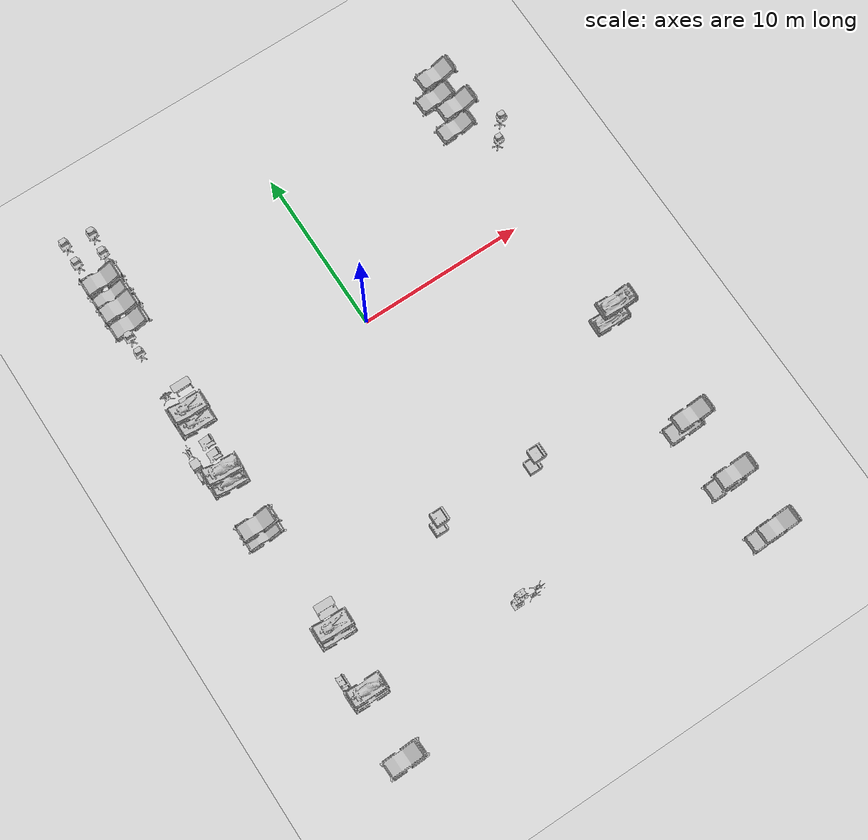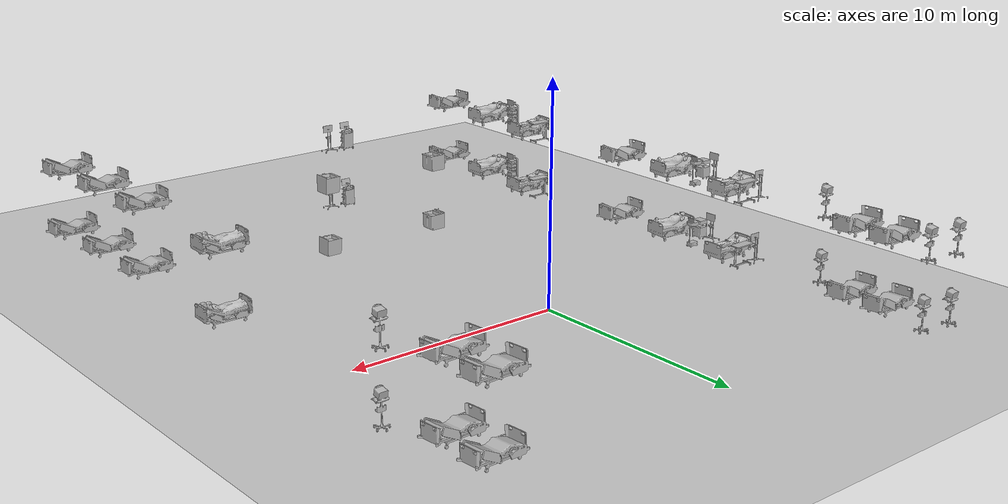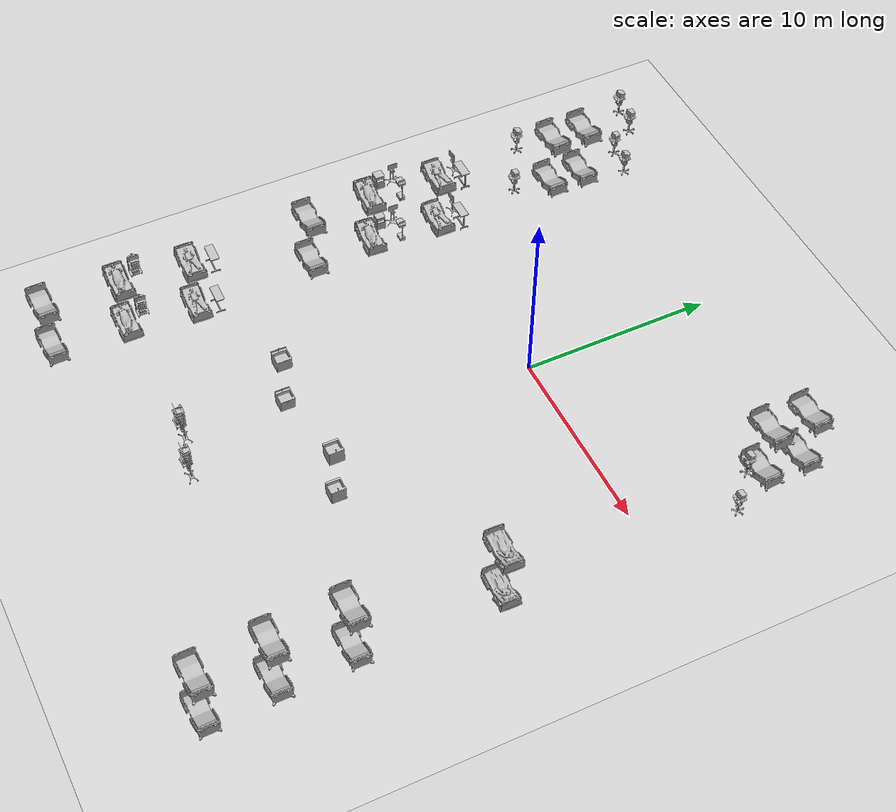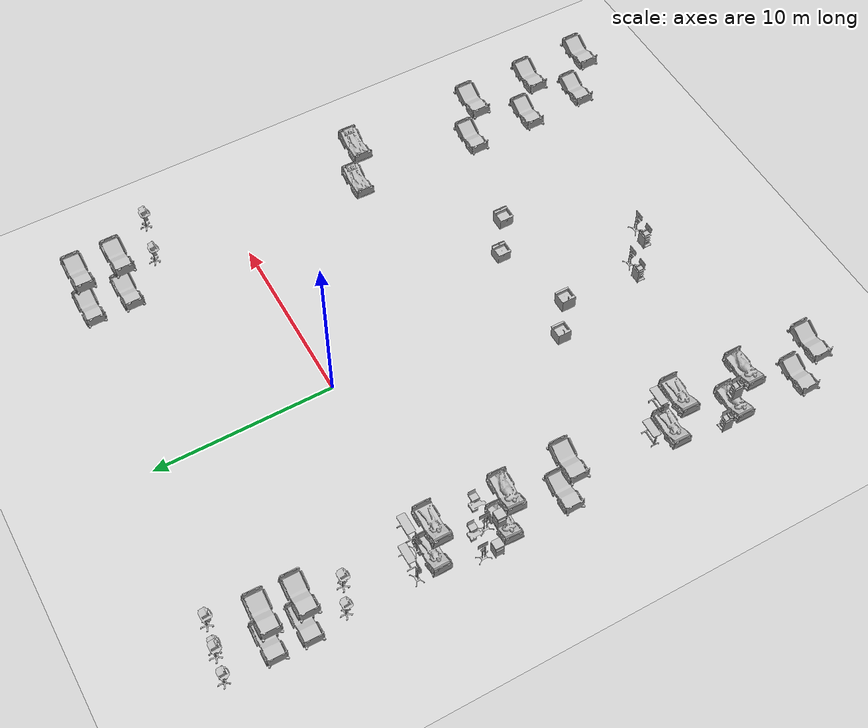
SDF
<sdf version="1.6">
 <world name="world">
  <gravity>0 0 -9.8</gravity>
  <physics default="0" name="default_physics" type="ode">
   <max_step_size>0.001</max_step_size>
   <real_time_factor>1</real_time_factor>
   <real_time_update_rate>1000</real_time_update_rate>
  </physics>
  <scene><ambient>0.6 0.6 0.6 1</ambient><background>0.4 0.4 0.4 1</background><shadows>false</shadows></scene>
  <include><uri>model://sun</uri></include>
  <include><uri>model://ground_plane</uri><pose>0 0 -0.1 0 -0 0</pose></include>
  <model name="CGMClassic_1">
   <include>
    <uri>model://CGMClassic</uri>
    <static>true</static>
    <pose>11.1777 -18.4129 0 0 0 -3.13719</pose>
   </include>
  </model>
  <model name="CGMClassic_2">
   <include>
    <uri>model://CGMClassic</uri>
    <static>true</static>
    <pose>11.1179 -14.6493 0 0 0 -3.13599</pose>
   </include>
  </model>
  <model name="CGMClassic_3">
   <include>
    <uri>model://CGMClassic</uri>
    <static>true</static>
    <pose>-11.2304 -21.1134 0 0 0 -3.11834</pose>
   </include>
  </model>
  <model name="ElderLadyPatient_1">
   <include>
    <uri>model://ElderLadyPatient</uri>
    <static>true</static>
    <pose>-10.9972 0.231354 0.001654 0 -0 0</pose>
   </include>
  </model>
  <model name="ElderLadyPatient_2">
   <include>
    <uri>model://ElderLadyPatient</uri>
    <static>true</static>
    <pose>-10.8133 -13.5925 0.001657 0 -2e-06 -0.025052</pose>
   </include>
  </model>
  <model name="CGMClassic_4">
   <include>
    <uri>model://CGMClassic</uri>
    <static>true</static>
    <pose>-11.0878 -7.00992 0 0 -0 3.1351</pose>
   </include>
  </model>
  <model name="InstrumentCart1_1">
   <include>
    <uri>model://InstrumentCart1</uri>
    <static>true</static>
    <pose>-11.8071 -16.1825 0 0 -0 1.56702</pose>
   </include>
  </model>
  <model name="ElderMalePatient_1">
   <include>
    <uri>model://ElderMalePatient</uri>
    <static>true</static>
    <pose>-11.1165 -17.2377 0.001656 0 3e-06 0</pose>
   </include>
  </model>
  <model name="InstrumentCart2_1">
   <include>
    <uri>model://InstrumentCart2</uri>
    <static>true</static>
    <pose>-12.0906 -1.87329 0.051875 0 -0 1.57773</pose>
   </include>
  </model>
  <model name="InstrumentCart2_2">
   <include>
    <uri>model://InstrumentCart2</uri>
    <static>true</static>
    <pose>-11.5231 1.34237 0 0 -0 0</pose>
   </include>
  </model>
  <model name="CGMClassic_5">
   <include>
    <uri>model://CGMClassic</uri>
    <static>true</static>
    <pose>-11.0106 8.9505 -0.008203 -0.035019 -0.000392 3.13388</pose>
   </include>
  </model>
  <model name="CGMClassic_6">
   <include>
    <uri>model://CGMClassic</uri>
    <static>true</static>
    <pose>-11.025 7.10335 0 -0.035021 1.8e-05 -3.13762</pose>
   </include>
  </model>
  <model name="BedTable_1">
   <include>
    <uri>model://BedTable</uri>
    <static>true</static>
    <pose>-10.4759 1.39442 0.001184 0 -3e-06 0</pose>
   </include>
  </model>
  <model name="BedTable_2">
   <include>
    <uri>model://BedTable</uri>
    <static>true</static>
    <pose>-10.5874 -12.5084 0.001189 0 -0 3.11588</pose>
   </include>
  </model>
  <model name="BedsideTable_1">
   <include>
    <uri>model://BedsideTable</uri>
    <static>true</static>
    <pose>-12.1499 -2.63111 0.00018 1e-06 -0 -0.00878</pose>
   </include>
  </model>
  <model name="InstrumentCart1_2">
   <include>
    <uri>model://InstrumentCart1</uri>
    <static>true</static>
    <pose>-11.8071 -16.1825 0 0 -0 1.56702</pose>
   </include>
  </model>
  <model name="InstrumentCart2_3">
   <include>
    <uri>model://InstrumentCart2</uri>
    <static>true</static>
    <pose>-0.869537 -17.7436 0 0 0 -0.002595</pose>
   </include>
  </model>
  <model name="KitchenSink_1">
   <include>
    <uri>model://KitchenSink</uri>
    <static>true</static>
    <pose>3.06236 -11.8809 -0.001614 0 -0 3.1391</pose>
   </include>
  </model>
  <model name="KitchenSink_2">
   <include>
    <uri>model://KitchenSink</uri>
    <static>true</static>
    <pose>-3.09305 -11.8988 -0.001609 0 -0 0</pose>
   </include>
  </model>
  <model name="CGMClassic_7">
   <include>
    <uri>model://CGMClassic</uri>
    <static>true</static>
    <pose>10.6166 9.06291 -0.008203 -0.03501 0.000885 -3.11285</pose>
   </include>
  </model>
  <model name="CGMClassic_8">
   <include>
    <uri>model://CGMClassic</uri>
    <static>true</static>
    <pose>10.6006 6.90956 -0.008203 -0.035003 0.001133 -3.10576</pose>
   </include>
  </model>
  <model name="MalePatientBed_1">
   <include>
    <uri>model://MalePatientBed</uri>
    <static>true</static>
    <pose>11.3771 -7.38891 0.001658 -1e-06 1e-06 3.11598</pose>
   </include>
  </model>
  <model name="CGMClassic_9">
   <include>
    <uri>model://CGMClassic</uri>
    <static>true</static>
    <pose>11.3613 -21.8867 0 0 0 -3.12292</pose>
   </include>
  </model>
  <model name="InstrumentCart1_3">
   <include>
    <uri>model://InstrumentCart1</uri>
    <static>true</static>
    <pose>-1.83539 -17.5879 0 0 -0 0</pose>
   </include>
  </model>
  <model name="ElderMalePatient_2">
   <include>
    <uri>model://ElderMalePatient</uri>
    <static>true</static>
    <pose>-11.2471 -3.5813 0.001656 0 -0 -0.054192</pose>
   </include>
  </model>
  <model name="BMWCart_1">
   <include><uri>model://BMWCart</uri><static>true</static><pose>-10.931 -1.9483 0 0 -0 0</pose></include>
  </model>
  <model name="BPCart_1">
   <include>
    <uri>model://BPCart</uri>
    <static>true</static>
    <pose>-10.1788 11.173 0.003446 1e-06 -0 0.003096</pose>
   </include>
  </model>
  <model name="BPCart_2">
   <include><uri>model://BPCart</uri><static>true</static><pose>12.0072 4.64765 0 0 -0 0</pose></include>
  </model>
  <model name="BPCart_3">
   <include><uri>model://BPCart</uri><static>true</static><pose>-11.7236 11.4294 0 0 -0 0</pose></include>
  </model>
  <model name="BPCart_4">
   <include>
    <uri>model://BPCart</uri>
    <static>true</static>
    <pose>-11.4703 5.05999 0.003446 1e-06 -0 0.003096</pose>
   </include>
  </model>
  <model name="floor_1_CGMClassic_1">
   <include>
    <uri>model://CGMClassic</uri>
    <static>true</static>
    <pose>11.1777 -18.4129 3.0 0 0 -3.13719</pose>
   </include>
  </model>
  <model name="floor_1_CGMClassic_2">
   <include>
    <uri>model://CGMClassic</uri>
    <static>true</static>
    <pose>11.1179 -14.6493 3.0 0 0 -3.13599</pose>
   </include>
  </model>
  <model name="floor_1_CGMClassic_3">
   <include>
    <uri>model://CGMClassic</uri>
    <static>true</static>
    <pose>-11.2304 -21.1134 3.0 0 0 -3.11834</pose>
   </include>
  </model>
  <model name="floor_1_ElderLadyPatient_1">
   <include>
    <uri>model://ElderLadyPatient</uri>
    <static>true</static>
    <pose>-10.9972 0.231354 3.001654 0 -0 0</pose>
   </include>
  </model>
  <model name="floor_1_ElderLadyPatient_2">
   <include>
    <uri>model://ElderLadyPatient</uri>
    <static>true</static>
    <pose>-10.8133 -13.5925 3.001657 0 -2e-06 -0.025052</pose>
   </include>
  </model>
  <model name="floor_1_CGMClassic_4">
   <include>
    <uri>model://CGMClassic</uri>
    <static>true</static>
    <pose>-11.0878 -7.00992 3.0 0 -0 3.1351</pose>
   </include>
  </model>
  <model name="floor_1_InstrumentCart1_1">
   <include>
    <uri>model://InstrumentCart1</uri>
    <static>true</static>
    <pose>-11.8071 -16.1825 3.0 0 -0 1.56702</pose>
   </include>
  </model>
  <model name="floor_1_ElderMalePatient_1">
   <include>
    <uri>model://ElderMalePatient</uri>
    <static>true</static>
    <pose>-11.1165 -17.2377 3.001656 0 3e-06 0</pose>
   </include>
  </model>
  <model name="floor_1_InstrumentCart2_1">
   <include>
    <uri>model://InstrumentCart2</uri>
    <static>true</static>
    <pose>-12.0906 -1.87329 3.051875 0 -0 1.57773</pose>
   </include>
  </model>
  <model name="floor_1_InstrumentCart2_2">
   <include>
    <uri>model://InstrumentCart2</uri>
    <static>true</static>
    <pose>-11.5231 1.34237 3.0 0 -0 0</pose>
   </include>
  </model>
  <model name="floor_1_CGMClassic_5">
   <include>
    <uri>model://CGMClassic</uri>
    <static>true</static>
    <pose>-11.0106 8.9505 2.991797 -0.035019 -0.000392 3.13388</pose>
   </include>
  </model>
  <model name="floor_1_CGMClassic_6">
   <include>
    <uri>model://CGMClassic</uri>
    <static>true</static>
    <pose>-11.025 7.10335 3.0 -0.035021 1.8e-05 -3.13762</pose>
   </include>
  </model>
  <model name="floor_1_BedTable_1">
   <include>
    <uri>model://BedTable</uri>
    <static>true</static>
    <pose>-10.4759 1.39442 3.001184 0 -3e-06 0</pose>
   </include>
  </model>
  <model name="floor_1_BedTable_2">
   <include>
    <uri>model://BedTable</uri>
    <static>true</static>
    <pose>-10.5874 -12.5084 3.001189 0 -0 3.11588</pose>
   </include>
  </model>
  <model name="floor_1_BedsideTable_1">
   <include>
    <uri>model://BedsideTable</uri>
    <static>true</static>
    <pose>-12.1499 -2.63111 3.00018 1e-06 -0 -0.00878</pose>
   </include>
  </model>
  <model name="floor_1_InstrumentCart1_2">
   <include>
    <uri>model://InstrumentCart1</uri>
    <static>true</static>
    <pose>-11.8071 -16.1825 3.0 0 -0 1.56702</pose>
   </include>
  </model>
  <model name="floor_1_InstrumentCart2_3">
   <include>
    <uri>model://InstrumentCart2</uri>
    <static>true</static>
    <pose>-0.869537 -17.7436 3.0 0 0 -0.002595</pose>
   </include>
  </model>
  <model name="floor_1_KitchenSink_1">
   <include>
    <uri>model://KitchenSink</uri>
    <static>true</static>
    <pose>3.06236 -11.8809 2.998386 0 -0 3.1391</pose>
   </include>
  </model>
  <model name="floor_1_KitchenSink_2">
   <include>
    <uri>model://KitchenSink</uri>
    <static>true</static>
    <pose>-3.09305 -11.8988 2.998391 0 -0 0</pose>
   </include>
  </model>
  <model name="floor_1_CGMClassic_7">
   <include>
    <uri>model://CGMClassic</uri>
    <static>true</static>
    <pose>10.6166 9.06291 2.991797 -0.03501 0.000885 -3.11285</pose>
   </include>
  </model>
  <model name="floor_1_CGMClassic_8">
   <include>
    <uri>model://CGMClassic</uri>
    <static>true</static>
    <pose>10.6006 6.90956 2.991797 -0.035003 0.001133 -3.10576</pose>
   </include>
  </model>
  <model name="floor_1_MalePatientBed_1">
   <include>
    <uri>model://MalePatientBed</uri>
    <static>true</static>
    <pose>11.3771 -7.38891 3.001658 -1e-06 1e-06 3.11598</pose>
   </include>
  </model>
  <model name="floor_1_CGMClassic_9">
   <include>
    <uri>model://CGMClassic</uri>
    <static>true</static>
    <pose>11.3613 -21.8867 3.0 0 0 -3.12292</pose>
   </include>
  </model>
  <model name="floor_1_InstrumentCart1_3">
   <include>
    <uri>model://InstrumentCart1</uri>
    <static>true</static>
    <pose>-1.83539 -17.5879 3.0 0 -0 0</pose>
   </include>
  </model>
  <model name="floor_1_ElderMalePatient_2">
   <include>
    <uri>model://ElderMalePatient</uri>
    <static>true</static>
    <pose>-11.2471 -3.5813 3.001656 0 -0 -0.054192</pose>
   </include>
  </model>
  <model name="floor_1_BMWCart_1">
   <include><uri>model://BMWCart</uri><static>true</static><pose>-10.931 -1.9483 3.0 0 -0 0</pose></include>
  </model>
  <model name="floor_1_BPCart_1">
   <include>
    <uri>model://BPCart</uri>
    <static>true</static>
    <pose>-10.1788 11.173 3.003446 1e-06 -0 0.003096</pose>
   </include>
  </model>
  <model name="floor_1_BPCart_2">
   <include><uri>model://BPCart</uri><static>true</static><pose>12.0072 4.64765 3.0 0 -0 0</pose></include>
  </model>
  <model name="floor_1_BPCart_3">
   <include><uri>model://BPCart</uri><static>true</static><pose>-11.7236 11.4294 3.0 0 -0 0</pose></include>
  </model>
  <model name="floor_1_BPCart_4">
   <include>
    <uri>model://BPCart</uri>
    <static>true</static>
    <pose>-11.4703 5.05999 3.003446 1e-06 -0 0.003096</pose>
   </include>
  </model>
 </world>
</sdf>

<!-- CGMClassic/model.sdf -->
<sdf version="1.6">
  <model name="CGMClassic">
   <static>true</static>
    <link name="body">
      <pose>0 0 0 0 0 0</pose>

      <visual name="visual">
        <geometry>
          <mesh>
            <uri>model://CGMClassic/meshes/CGMClassic.obj</uri>
            <scale>0.01 0.01 0.01</scale>
          </mesh>
        </geometry>
      </visual>

      <collision name="collision">
        <geometry>
          <mesh>
            <uri>model://CGMClassic/meshes/CGMClassic.obj</uri>
            <scale>0.01 0.01 0.01</scale>
          </mesh>
        </geometry>
      </collision>

    </link>
  </model>
</sdf>

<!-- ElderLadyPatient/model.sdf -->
<sdf version="1.6">
  <model name='ElderLadyPatient'>
    <link name="body">
      <pose>0 0 0 0 0 0</pose>

      <visual name="visual">
        <geometry>
          <mesh>
            <uri>model://ElderLadyPatient/meshes/ElderFemale.obj</uri>
          </mesh>
        </geometry>
      </visual>

      <collision name="collision">
        <geometry>
          <mesh>
            <uri>model://ElderLadyPatient/meshes/ElderFemale.obj</uri>
          </mesh>
        </geometry>
      </collision>

    </link>
  </model>
</sdf>

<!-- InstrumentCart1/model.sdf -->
<sdf version="1.6">
  <model name="InstrumentCart1">
   <static>true</static>
    <link name="body">
      <pose>0 0 0 0 0 0</pose>

      <visual name="visual">
        <geometry>
          <mesh>
            <uri>model://InstrumentCart1/meshes/InstrumentCart1.obj</uri>
          </mesh>
        </geometry>
      </visual>

      <collision name="collision">
        <geometry>
          <mesh>
            <uri>model://InstrumentCart1/meshes/InstrumentCart1.obj</uri>
          </mesh>
        </geometry>
      </collision>

    </link>
  </model>
</sdf>

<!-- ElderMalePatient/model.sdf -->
<sdf version="1.5">
  <model name="ElderMalePatient">
    <link name="link">
      <pose>0 0 0 0 0 0</pose>

        <visual name="visual">
          <geometry>
            <mesh><uri>model://ElderMalePatient/meshes/ElderMalePatient.obj</uri></mesh>
          </geometry>
        </visual>

        <collision name="collision">
          <geometry>
            <mesh><uri>model://ElderMalePatient/meshes/ElderMalePatient.obj</uri></mesh>
          </geometry>
        </collision>

    </link>
  </model>
</sdf>

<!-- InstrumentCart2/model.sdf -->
<sdf version="1.6">
  <model name="InstrumentCart2">
   <static>true</static>
    <link name="body">
      <pose>0 0 0 0 0 0</pose>

      <visual name="visual">
        <geometry>
          <mesh>
            <uri>model://InstrumentCart2/meshes/InstrumentCart2.obj</uri>
          </mesh>
        </geometry>
      </visual>

      <collision name="collision">
        <geometry>
          <mesh>
            <uri>model://InstrumentCart2/meshes/InstrumentCart2.obj</uri>
          </mesh>
        </geometry>
      </collision>

    </link>
  </model>
</sdf>

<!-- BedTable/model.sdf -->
<sdf version="1.6">
  <model name='BedTable'>
    <link name="body">
      <pose>0 0 0 0 0 0</pose>

      <visual name="visual">
        <geometry>
          <mesh>
            <uri>model://BedTable/meshes/BedTable.obj</uri>
          </mesh>
        </geometry>
      </visual>

      <collision name="collision">
        <geometry>
          <mesh>
            <uri>model://BedTable/meshes/BedTable_Col.obj</uri>
          </mesh>
        </geometry>
      </collision>

    </link>
  </model>
</sdf>

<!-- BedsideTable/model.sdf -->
<sdf version="1.6">
  <model name='BedsideTable'>
    <link name="body">
      <pose>0 0 0 0 0 -1.5708</pose>

      <visual name="visual">
        <geometry>
          <mesh>
            <uri>model://BedsideTable/meshes/BedsideTable.obj</uri>
          </mesh>
        </geometry>
      </visual>

      <collision name="collision">
        <geometry>
          <mesh>
            <uri>model://BedsideTable/meshes/BedsideTable_Col.obj</uri>
          </mesh>
        </geometry>
      </collision>

    </link>
  </model>
</sdf>

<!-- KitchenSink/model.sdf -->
<sdf version="1.5">
  <model name="KitchenSink">
    <link name="link">
      <pose>0 0 0 0 0 0</pose>

        <visual name="visual">
          <geometry>
            <mesh><uri>model://KitchenSink/meshes/kitchenSink.obj</uri></mesh>
          </geometry>
        </visual>

        <collision name="collision">
          <geometry>
            <mesh><uri>model://KitchenSink/meshes/kitchenSink.obj</uri></mesh>
          </geometry>
        </collision>

    </link>
  </model>
</sdf>

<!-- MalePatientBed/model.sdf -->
<sdf version="1.5">
  <model name="MalePatientBed">
    <link name="link">
      <pose>0 0 0 0 0 0</pose>

        <visual name="visual">
          <geometry>
            <mesh><uri>model://MalePatientBed/meshes/MalePatientBed.obj</uri></mesh>
          </geometry>
        </visual>

        <collision name="collision">
          <geometry>
            <mesh><uri>model://MalePatientBed/meshes/MalePatientBed.obj</uri></mesh>
          </geometry>
        </collision>

    </link>
  </model>
</sdf>

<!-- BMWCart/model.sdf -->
<sdf version="1.6">
  <model name='BMWCart'>
    <link name="body">
      <pose>0 0 0 0 0 0</pose>

      <visual name="visual">
        <geometry>
          <mesh>
            <uri>model://BMWCart/meshes/Cart_BMW.obj</uri>
          </mesh>
        </geometry>
      </visual>

      <collision name="collision">
        <geometry>
          <mesh>
            <uri>model://BMWCart/meshes/Cart_BMW_Col.obj</uri>
          </mesh>
        </geometry>
      </collision>

    </link>
  </model>
</sdf>

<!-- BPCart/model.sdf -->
<sdf version="1.6">
  <model name='BPCart'>
    <link name="body">
      <pose>0 0 0 0 0 0</pose>

      <visual name="visual">
        <geometry>
          <mesh>
            <uri>model://BPCart/meshes/Cart_BP.obj</uri>
          </mesh>
        </geometry>
      </visual>

      <collision name="collision">
        <geometry>
          <mesh>
            <uri>model://BPCart/meshes/Cart_BP_Col.obj</uri>
          </mesh>
        </geometry>
      </collision>

    </link>
  </model>
</sdf>
